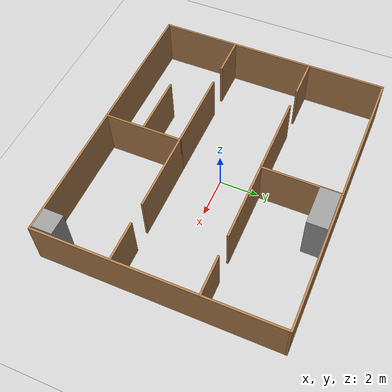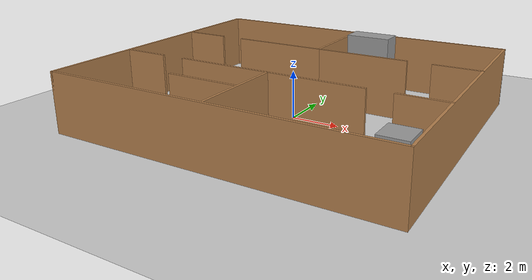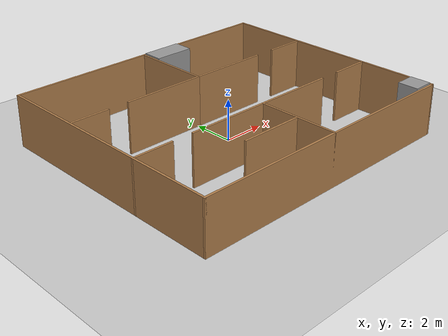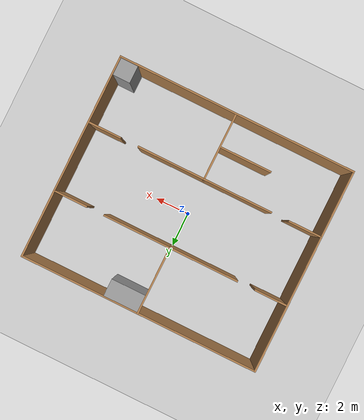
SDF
<sdf version="1.7">
 <world name="default">
  <light name="sun" type="directional">
   <pose>0 0 10 0 -0 0</pose>
   <diffuse>0.8 0.8 0.8 1</diffuse>
   <specular>0.2 0.2 0.2 1</specular>
   <attenuation>
    <range>1000</range>
    <constant>0.9</constant>
    <linear>0.01</linear>
    <quadratic>0.001</quadratic>
   </attenuation>
   <direction>-0.5 0.1 -0.9</direction>
   <spot><inner_angle>0</inner_angle><outer_angle>0</outer_angle><falloff>0</falloff></spot>
  </light>
  <model name="ground_plane">
   <static>1</static>
   <link name="link">
    <collision name="collision">
     <geometry><plane><normal>0 0 1</normal><size>100 100</size></plane></geometry>
     <surface>
      <contact><collide_bitmask>65535</collide_bitmask></contact>
      <friction><ode><mu>100</mu><mu2>50</mu2></ode></friction>
     </surface>
    </collision>
    <visual name="visual">
     <cast_shadows>0</cast_shadows>
     <geometry><plane><normal>0 0 1</normal><size>100 100</size></plane></geometry>
     <material>
      <script><uri>file://media/materials/scripts/gazebo.material</uri><name>Gazebo/Grey</name></script>
     </material>
    </visual>
   </link>
  </model>
  <gravity>0 0 -9.8</gravity>
  <magnetic_field>6e-06 2.3e-05 -4.2e-05</magnetic_field>
  <atmosphere type="adiabatic"/>
  <physics type="ode">
   <max_step_size>0.001</max_step_size>
   <real_time_factor>1</real_time_factor>
   <real_time_update_rate>1000</real_time_update_rate>
  </physics>
  <scene><ambient>0.4 0.4 0.4 1</ambient><background>0.7 0.7 0.7 1</background><shadows>1</shadows></scene>
  <spherical_coordinates>
   <surface_model>EARTH_WGS84</surface_model>
   <latitude_deg>0</latitude_deg>
   <longitude_deg>0</longitude_deg>
   <elevation>0</elevation>
   <heading_deg>0</heading_deg>
  </spherical_coordinates>
  <model name="rooms_small">
   <pose>0.015737 0.003151 0 0 -0 0</pose>
   <link name="Wall_0">
    <collision name="Wall_0_Collision">
     <geometry><box><size>14 0.1 2.5</size></box></geometry>
     <pose>0 0 1.25 0 -0 0</pose>
    </collision>
    <visual name="Wall_0_Visual">
     <pose>0 0 1.25 0 -0 0</pose>
     <geometry><box><size>14 0.1 2.5</size></box></geometry>
     <material>
      <script><uri>file://media/materials/scripts/gazebo.material</uri><name>Gazebo/Wood</name></script>
      <ambient>1 1 1 1</ambient>
     </material>
     <meta><layer>0</layer></meta>
    </visual>
    <pose>0 -5.95 0 0 -0 0</pose>
   </link>
   <link name="Wall_10">
    <collision name="Wall_10_Collision">
     <geometry><box><size>4.1 0.1 2.5</size></box></geometry>
     <pose>0 0 1.25 0 -0 0</pose>
    </collision>
    <visual name="Wall_10_Visual">
     <pose>0 0 1.25 0 -0 0</pose>
     <geometry><box><size>4.1 0.1 2.5</size></box></geometry>
     <material>
      <script><uri>file://media/materials/scripts/gazebo.material</uri><name>Gazebo/Wood</name></script>
      <ambient>1 1 1 1</ambient>
     </material>
     <meta><layer>0</layer></meta>
    </visual>
    <pose>-1.95 -2.05 0 0 -0 3.14159</pose>
   </link>
   <link name="Wall_12">
    <collision name="Wall_12_Collision">
     <geometry><box><size>4 0.1 2.5</size></box></geometry>
     <pose>0 0 1.25 0 -0 0</pose>
    </collision>
    <visual name="Wall_12_Visual">
     <pose>0 0 1.25 0 -0 0</pose>
     <geometry><box><size>4 0.1 2.5</size></box></geometry>
     <material>
      <script><uri>file://media/materials/scripts/gazebo.material</uri><name>Gazebo/Wood</name></script>
      <ambient>1 1 1 1</ambient>
     </material>
     <meta><layer>0</layer></meta>
    </visual>
    <pose>2 -2.05 0 0 -0 0</pose>
   </link>
   <link name="Wall_15">
    <collision name="Wall_15_Collision">
     <geometry><box><size>2 0.1 2.5</size></box></geometry>
     <pose>0 0 1.25 0 -0 0</pose>
    </collision>
    <visual name="Wall_15_Visual">
     <pose>0 0 1.25 0 -0 0</pose>
     <geometry><box><size>2 0.1 2.5</size></box></geometry>
     <material>
      <script><uri>file://media/materials/scripts/gazebo.material</uri><name>Gazebo/Wood</name></script>
      <ambient>1 1 1 1</ambient>
     </material>
     <meta><layer>0</layer></meta>
    </visual>
    <pose>-6 -2.05 0 0 -0 0</pose>
   </link>
   <link name="Wall_17">
    <collision name="Wall_17_Collision">
     <geometry><box><size>2 0.1 2.5</size></box></geometry>
     <pose>0 0 1.25 0 -0 0</pose>
    </collision>
    <visual name="Wall_17_Visual">
     <pose>0 0 1.25 0 -0 0</pose>
     <geometry><box><size>2 0.1 2.5</size></box></geometry>
     <material>
      <script><uri>file://media/materials/scripts/gazebo.material</uri><name>Gazebo/Wood</name></script>
      <ambient>1 1 1 1</ambient>
     </material>
     <meta><layer>0</layer></meta>
    </visual>
    <pose>6 -2.05 0 0 -0 3.14159</pose>
   </link>
   <link name="Wall_19">
    <collision name="Wall_19_Collision">
     <geometry><box><size>4 0.1 2.5</size></box></geometry>
     <pose>0 0 1.25 0 -0 0</pose>
    </collision>
    <visual name="Wall_19_Visual">
     <pose>0 0 1.25 0 -0 0</pose>
     <geometry><box><size>4 0.1 2.5</size></box></geometry>
     <material>
      <script><uri>file://media/materials/scripts/gazebo.material</uri><name>Gazebo/Wood</name></script>
      <ambient>1 1 1 1</ambient>
     </material>
     <meta><layer>0</layer></meta>
    </visual>
    <pose>0.05 4 0 0 -0 -1.5708</pose>
   </link>
   <link name="Wall_2">
    <collision name="Wall_2_Collision">
     <geometry><box><size>12 0.1 2.5</size></box></geometry>
     <pose>0 0 1.25 0 -0 0</pose>
    </collision>
    <visual name="Wall_2_Visual">
     <pose>0 0 1.25 0 -0 0</pose>
     <geometry><box><size>12 0.1 2.5</size></box></geometry>
     <material>
      <script><uri>file://media/materials/scripts/gazebo.material</uri><name>Gazebo/Wood</name></script>
      <ambient>1 1 1 1</ambient>
     </material>
     <meta><layer>0</layer></meta>
    </visual>
    <pose>-6.95 0 0 0 -0 1.5708</pose>
   </link>
   <link name="Wall_21">
    <collision name="Wall_21_Collision">
     <geometry><box><size>4 0.1 2.5</size></box></geometry>
     <pose>0 0 1.25 0 -0 0</pose>
    </collision>
    <visual name="Wall_21_Visual">
     <pose>0 0 1.25 0 -0 0</pose>
     <geometry><box><size>4 0.1 2.5</size></box></geometry>
     <material>
      <script><uri>file://media/materials/scripts/gazebo.material</uri><name>Gazebo/Wood</name></script>
      <ambient>1 1 1 1</ambient>
     </material>
     <meta><layer>0</layer></meta>
    </visual>
    <pose>2 2.05 0 0 -0 0</pose>
   </link>
   <link name="Wall_23">
    <collision name="Wall_23_Collision">
     <geometry><box><size>4.1 0.1 2.5</size></box></geometry>
     <pose>0 0 1.25 0 -0 0</pose>
    </collision>
    <visual name="Wall_23_Visual">
     <pose>0 0 1.25 0 -0 0</pose>
     <geometry><box><size>4.1 0.1 2.5</size></box></geometry>
     <material>
      <script><uri>file://media/materials/scripts/gazebo.material</uri><name>Gazebo/Wood</name></script>
      <ambient>1 1 1 1</ambient>
     </material>
     <meta><layer>0</layer></meta>
    </visual>
    <pose>-1.95 2.05 0 0 -0 3.14159</pose>
   </link>
   <link name="Wall_25">
    <collision name="Wall_25_Collision">
     <geometry><box><size>2 0.1 2.5</size></box></geometry>
     <pose>0 0 1.25 0 -0 0</pose>
    </collision>
    <visual name="Wall_25_Visual">
     <pose>0 0 1.25 0 -0 0</pose>
     <geometry><box><size>2 0.1 2.5</size></box></geometry>
     <material>
      <script><uri>file://media/materials/scripts/gazebo.material</uri><name>Gazebo/Wood</name></script>
      <ambient>1 1 1 1</ambient>
     </material>
     <meta><layer>0</layer></meta>
    </visual>
    <pose>-6 2.05 0 0 -0 0</pose>
   </link>
   <link name="Wall_27">
    <collision name="Wall_27_Collision">
     <geometry><box><size>1.999 0.1 2.5</size></box></geometry>
     <pose>0 0 1.25 0 -0 0</pose>
    </collision>
    <visual name="Wall_27_Visual">
     <pose>0 0 1.25 0 -0 0</pose>
     <geometry><box><size>1.999 0.1 2.5</size></box></geometry>
     <material>
      <script><uri>file://media/materials/scripts/gazebo.material</uri><name>Gazebo/Wood</name></script>
      <ambient>1 1 1 1</ambient>
     </material>
     <meta><layer>0</layer></meta>
    </visual>
    <pose>6 2.05 0 0 -0 3.14159</pose>
   </link>
   <link name="Wall_4">
    <collision name="Wall_4_Collision">
     <geometry><box><size>12 0.1 2.5</size></box></geometry>
     <pose>0 0 1.25 0 -0 0</pose>
    </collision>
    <visual name="Wall_4_Visual">
     <pose>0 0 1.25 0 -0 0</pose>
     <geometry><box><size>12 0.1 2.5</size></box></geometry>
     <material>
      <script><uri>file://media/materials/scripts/gazebo.material</uri><name>Gazebo/Wood</name></script>
      <ambient>1 1 1 1</ambient>
     </material>
     <meta><layer>0</layer></meta>
    </visual>
    <pose>6.95 0 0 0 -0 1.5708</pose>
   </link>
   <link name="Wall_6">
    <collision name="Wall_6_Collision">
     <geometry><box><size>14 0.1 2.5</size></box></geometry>
     <pose>0 0 1.25 0 -0 0</pose>
    </collision>
    <visual name="Wall_6_Visual">
     <pose>0 0 1.25 0 -0 0</pose>
     <geometry><box><size>14 0.1 2.5</size></box></geometry>
     <material>
      <script><uri>file://media/materials/scripts/gazebo.material</uri><name>Gazebo/Wood</name></script>
      <ambient>1 1 1 1</ambient>
     </material>
     <meta><layer>0</layer></meta>
    </visual>
    <pose>0 5.95 0 0 -0 0</pose>
   </link>
   <link name="Wall_8">
    <collision name="Wall_8_Collision">
     <geometry><box><size>4 0.1 2.5</size></box></geometry>
     <pose>0 0 1.25 0 -0 0</pose>
    </collision>
    <visual name="Wall_8_Visual">
     <pose>0 0 1.25 0 -0 0</pose>
     <geometry><box><size>4 0.1 2.5</size></box></geometry>
     <material>
      <script><uri>file://media/materials/scripts/gazebo.material</uri><name>Gazebo/Wood</name></script>
      <ambient>1 1 1 1</ambient>
     </material>
     <meta><layer>0</layer></meta>
    </visual>
    <pose>0.05 -4 0 0 -0 1.5708</pose>
   </link>
   <static>1</static>
  </model>
  <model name="assymetric_room">
   <link name="link_0">
    <inertial>
     <mass>1</mass>
     <inertia>
      <ixx>0.166667</ixx>
      <ixy>0</ixy>
      <ixz>0</ixz>
      <iyy>0.166667</iyy>
      <iyz>0</iyz>
      <izz>0.166667</izz>
     </inertia>
    </inertial>
    <pose>6.3879 -5.37353 1.07438 0 -0 0</pose>
    <visual name="visual">
     <geometry><box><size>1 1 3</size></box></geometry>
     <material>
      <lighting>1</lighting>
      <script><uri>file://media/materials/scripts/gazebo.material</uri><name>Gazebo/Grey</name></script>
      <shader type="pixel"><normal_map>__default__</normal_map></shader>
      <ambient>0.3 0.3 0.3 1</ambient>
      <diffuse>0.7 0.7 0.7 1</diffuse>
      <specular>0.01 0.01 0.01 1</specular>
      <emissive>0 0 0 1</emissive>
     </material>
    </visual>
    <collision name="collision">
     <geometry><box><size>1 1 1</size></box></geometry>
     <surface>
      <friction>
       <ode><mu>1</mu><mu2>1</mu2><fdir1>0 0 0</fdir1><slip1>0</slip1><slip2>0</slip2></ode>
       <torsional>
        <coefficient>1</coefficient>
        <patch_radius>0</patch_radius>
        <surface_radius>0</surface_radius>
        <use_patch_radius>1</use_patch_radius>
        <ode><slip>0</slip></ode>
       </torsional>
      </friction>
      <bounce><restitution_coefficient>0</restitution_coefficient><threshold>1e+06</threshold></bounce>
      <contact>
       <collide_without_contact>0</collide_without_contact>
       <collide_without_contact_bitmask>1</collide_without_contact_bitmask>
       <collide_bitmask>1</collide_bitmask>
       <ode>
        <soft_cfm>0</soft_cfm>
        <soft_erp>0.2</soft_erp>
        <kp>1e+13</kp>
        <kd>1</kd>
        <max_vel>0.01</max_vel>
        <min_depth>0</min_depth>
       </ode>
       <bullet>
        <split_impulse>1</split_impulse>
        <split_impulse_penetration_threshold>-0.01</split_impulse_penetration_threshold>
        <soft_cfm>0</soft_cfm>
        <soft_erp>0.2</soft_erp>
        <kp>1e+13</kp>
        <kd>1</kd>
       </bullet>
      </contact>
     </surface>
    </collision>
   </link>
   <link name="link_0_clone">
    <inertial>
     <mass>1</mass>
     <inertia>
      <ixx>0.166667</ixx>
      <ixy>0</ixy>
      <ixz>0</ixz>
      <iyy>0.166667</iyy>
      <iyz>0</iyz>
      <izz>0.166667</izz>
     </inertia>
    </inertial>
    <pose>1.11199 5.39894 1.07438 0 -0 0</pose>
    <visual name="visual">
     <geometry><box><size>2 1 3</size></box></geometry>
     <material>
      <lighting>1</lighting>
      <script><uri>file://media/materials/scripts/gazebo.material</uri><name>Gazebo/Grey</name></script>
      <shader type="pixel"><normal_map>__default__</normal_map></shader>
      <ambient>0.3 0.3 0.3 1</ambient>
      <diffuse>0.7 0.7 0.7 1</diffuse>
      <specular>0.01 0.01 0.01 1</specular>
      <emissive>0 0 0 1</emissive>
     </material>
    </visual>
    <collision name="collision">
     <geometry><box><size>1 1 1</size></box></geometry>
     <surface>
      <friction>
       <ode><mu>1</mu><mu2>1</mu2><fdir1>0 0 0</fdir1><slip1>0</slip1><slip2>0</slip2></ode>
       <torsional>
        <coefficient>1</coefficient>
        <patch_radius>0</patch_radius>
        <surface_radius>0</surface_radius>
        <use_patch_radius>1</use_patch_radius>
        <ode><slip>0</slip></ode>
       </torsional>
      </friction>
      <bounce><restitution_coefficient>0</restitution_coefficient><threshold>1e+06</threshold></bounce>
      <contact>
       <collide_without_contact>0</collide_without_contact>
       <collide_without_contact_bitmask>1</collide_without_contact_bitmask>
       <collide_bitmask>1</collide_bitmask>
       <ode>
        <soft_cfm>0</soft_cfm>
        <soft_erp>0.2</soft_erp>
        <kp>1e+13</kp>
        <kd>1</kd>
        <max_vel>0.01</max_vel>
        <min_depth>0</min_depth>
       </ode>
       <bullet>
        <split_impulse>1</split_impulse>
        <split_impulse_penetration_threshold>-0.01</split_impulse_penetration_threshold>
        <soft_cfm>0</soft_cfm>
        <soft_erp>0.2</soft_erp>
        <kp>1e+13</kp>
        <kd>1</kd>
       </bullet>
      </contact>
     </surface>
    </collision>
   </link>
   <model name="single_wall">
    <pose>-1.48475 -2.75448 -2e-06 0 -0 0</pose>
    <link name="Wall_0">
     <collision name="Wall_0_Collision">
      <geometry><box><size>3 0.1 2.5</size></box></geometry>
      <pose>0 0 1.25 0 -0 0</pose>
     </collision>
     <visual name="Wall_0_Visual">
      <pose>0 0 1.25 0 -0 0</pose>
      <geometry><box><size>3 0.1 2.5</size></box></geometry>
      <material>
       <script><uri>file://media/materials/scripts/gazebo.material</uri><name>Gazebo/Wood</name></script>
       <ambient>1 1 1 1</ambient>
      </material>
      <meta><layer>0</layer></meta>
     </visual>
     <pose>0 -1.22 0 0 -0 0</pose>
    </link>
    <static>1</static>
   </model>
   <static>0</static>
   <pose>-2e-06 0 2e-06 0 -0 0</pose>
  </model>
 </world>
</sdf>
